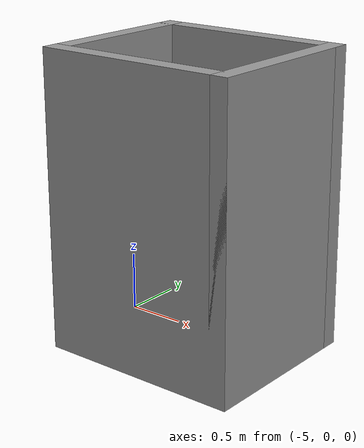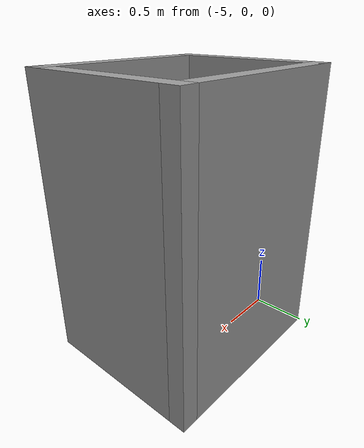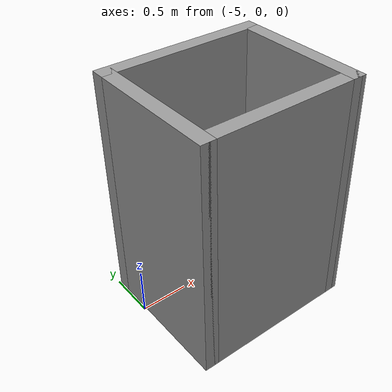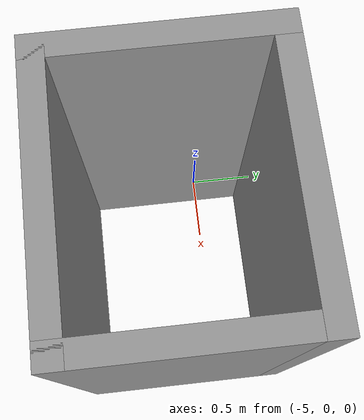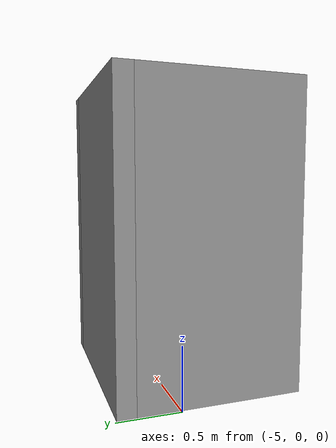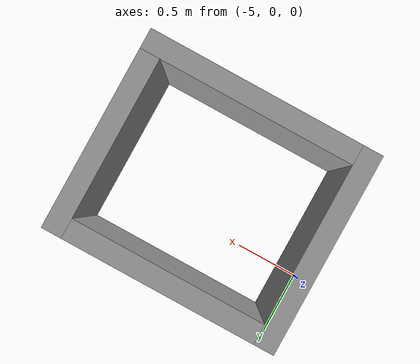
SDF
<?xml version='1.0'?>
<sdf version='1.7'>
  <model name='Untitled'>
    <pose>-2.49052 -0.260416 0 0 -0 0</pose>
    <link name='Wall_48'>
      <collision name='Wall_48_Collision'>
        <geometry>
          <box>
            <size>1.5 0.15 2.5</size>
          </box>
        </geometry>
        <pose>0 0 1.25 0 -0 0</pose>
      </collision>
      <visual name='Wall_48_Visual'>
        <pose>0 0 1.25 0 -0 0</pose>
        <geometry>
          <box>
            <size>1.5 0.15 2.5</size>
          </box>
        </geometry>
        <material>
          <script>
            <uri>file://media/materials/scripts/gazebo.material</uri>
            <name>Gazebo/Grey</name>
          </script>
          <ambient>1 1 1 1</ambient>
        </material>
        <meta>
          <layer>0</layer>
        </meta>
      </visual>
      <pose>-2.41552 0 0 0 -0 -1.5708</pose>
    </link>
    <link name='Wall_49'>
      <collision name='Wall_49_Collision'>
        <geometry>
          <box>
            <size>1.75 0.15 2.5</size>
          </box>
        </geometry>
        <pose>0 0 1.25 0 -0 0</pose>
      </collision>
      <visual name='Wall_49_Visual'>
        <pose>0 0 1.25 0 -0 0</pose>
        <geometry>
          <box>
            <size>1.75 0.15 2.5</size>
          </box>
        </geometry>
        <material>
          <script>
            <uri>file://media/materials/scripts/gazebo.material</uri>
            <name>Gazebo/Grey</name>
          </script>
          <ambient>1 1 1 1</ambient>
        </material>
        <meta>
          <layer>0</layer>
        </meta>
      </visual>
      <pose>-1.61552 -0.675 0 0 -0 0</pose>
    </link>
    <link name='Wall_50'>
      <collision name='Wall_50_Collision'>
        <geometry>
          <box>
            <size>1.5 0.15 2.5</size>
          </box>
        </geometry>
        <pose>0 0 1.25 0 -0 0</pose>
      </collision>
      <visual name='Wall_50_Visual'>
        <pose>0 0 1.25 0 -0 0</pose>
        <geometry>
          <box>
            <size>1.5 0.15 2.5</size>
          </box>
        </geometry>
        <material>
          <script>
            <uri>file://media/materials/scripts/gazebo.material</uri>
            <name>Gazebo/Grey</name>
          </script>
          <ambient>1 1 1 1</ambient>
        </material>
        <meta>
          <layer>0</layer>
        </meta>
      </visual>
      <pose>-0.815521 0 0 0 -0 1.5708</pose>
    </link>
    <link name='Wall_51'>
      <collision name='Wall_51_Collision'>
        <geometry>
          <box>
            <size>1.75 0.15 2.5</size>
          </box>
        </geometry>
        <pose>0 0 1.25 0 -0 0</pose>
      </collision>
      <visual name='Wall_51_Visual'>
        <pose>0 0 1.25 0 -0 0</pose>
        <geometry>
          <box>
            <size>1.75 0.15 2.5</size>
          </box>
        </geometry>
        <material>
          <script>
            <uri>file://media/materials/scripts/gazebo.material</uri>
            <name>Gazebo/Grey</name>
          </script>
          <ambient>1 1 1 1</ambient>
        </material>
        <meta>
          <layer>0</layer>
        </meta>
      </visual>
      <pose>-1.61552 0.675 0 0 -0 3.14159</pose>
    </link>
    <static>1</static>
  </model>
</sdf>
